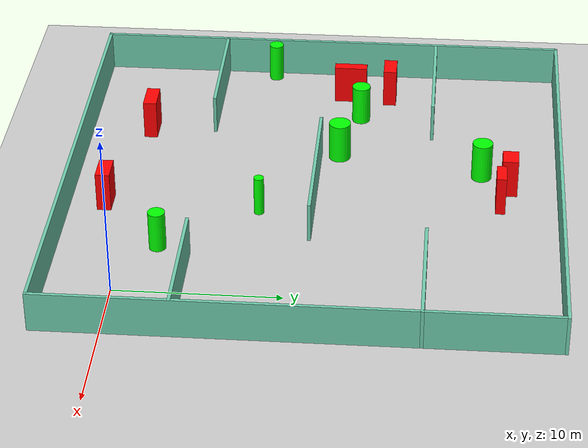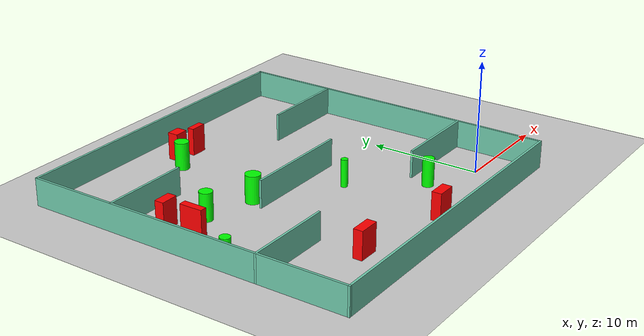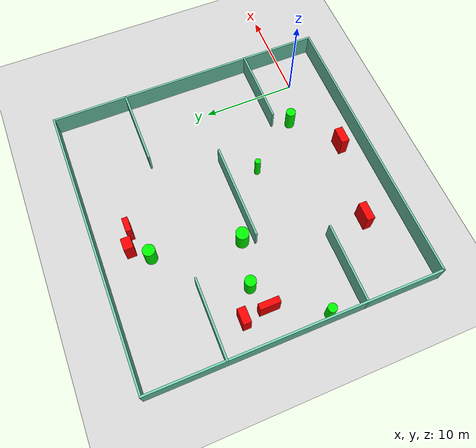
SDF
<sdf version="1.7">
 <world name="default">
  <light name="sun" type="directional">
   <pose>0 0 10 0 -0 0</pose>
   <diffuse>0.8 0.8 0.8 1</diffuse>
   <specular>0.2 0.2 0.2 1</specular>
   <attenuation>
    <range>1000</range>
    <constant>0.9</constant>
    <linear>0.01</linear>
    <quadratic>0.001</quadratic>
   </attenuation>
   <direction>-0.5 0.1 -0.9</direction>
   <spot><inner_angle>0</inner_angle><outer_angle>0</outer_angle><falloff>0</falloff></spot>
  </light>
  <model name="ground_plane">
   <static>1</static>
   <link name="link">
    <collision name="collision">
     <geometry><plane><normal>0 0 1</normal><size>100 100</size></plane></geometry>
     <surface>
      <contact><collide_bitmask>65535</collide_bitmask></contact>
      <friction><ode><mu>100</mu><mu2>50</mu2></ode></friction>
     </surface>
    </collision>
    <visual name="visual">
     <cast_shadows>0</cast_shadows>
     <geometry><plane><normal>0 0 1</normal><size>100 100</size></plane></geometry>
     <material>
      <script><uri>file://media/materials/scripts/gazebo.material</uri><name>Gazebo/Grey</name></script>
     </material>
    </visual>
   </link>
  </model>
  <gravity>0 0 -9.8</gravity>
  <magnetic_field>6e-06 2.3e-05 -4.2e-05</magnetic_field>
  <atmosphere type="adiabatic"/>
  <physics type="ode">
   <max_step_size>0.001</max_step_size>
   <real_time_factor>1</real_time_factor>
   <real_time_update_rate>1000</real_time_update_rate>
  </physics>
  <scene><ambient>0.4 0.4 0.4 1</ambient><background>0.7 0.7 0.7 1</background><shadows>1</shadows></scene>
  <spherical_coordinates>
   <surface_model>EARTH_WGS84</surface_model>
   <latitude_deg>0</latitude_deg>
   <longitude_deg>0</longitude_deg>
   <elevation>0</elevation>
   <heading_deg>0</heading_deg>
  </spherical_coordinates>
  <model name="my_base_walls">
   <link name="Wall_10">
    <collision name="Wall_10_Collision">
     <geometry><box><size>8.2 0.2 2.5</size></box></geometry>
     <pose>0 0 1.25 0 -0 0</pose>
    </collision>
    <visual name="Wall_10_Visual">
     <pose>0 0 1.25 0 -0 0</pose>
     <geometry><box><size>8.2 0.2 2.5</size></box></geometry>
     <material>
      <script><uri>file://media/materials/scripts/gazebo.material</uri><name>Gazebo/Grey</name></script>
      <ambient>0.435294 0.796078 0.67451 1</ambient>
     </material>
     <meta><layer>0</layer></meta>
    </visual>
    <pose>-11 -7 0 0 -0 0</pose>
   </link>
   <link name="Wall_12">
    <collision name="Wall_12_Collision">
     <geometry><box><size>8.2 0.2 2.5</size></box></geometry>
     <pose>0 0 1.25 0 -0 0</pose>
    </collision>
    <visual name="Wall_12_Visual">
     <pose>0 0 1.25 0 -0 0</pose>
     <geometry><box><size>8.2 0.2 2.5</size></box></geometry>
     <material>
      <script><uri>file://media/materials/scripts/gazebo.material</uri><name>Gazebo/Grey</name></script>
      <ambient>0.435294 0.796078 0.67451 1</ambient>
     </material>
     <meta><layer>0</layer></meta>
    </visual>
    <pose>-11 7 0 0 -0 0</pose>
   </link>
   <link name="Wall_14">
    <collision name="Wall_14_Collision">
     <geometry><box><size>8.2 0.2 2.5</size></box></geometry>
     <pose>0 0 1.25 0 -0 0</pose>
    </collision>
    <visual name="Wall_14_Visual">
     <pose>0 0 1.25 0 -0 0</pose>
     <geometry><box><size>8.2 0.2 2.5</size></box></geometry>
     <material>
      <script><uri>file://media/materials/scripts/gazebo.material</uri><name>Gazebo/Grey</name></script>
      <ambient>0.435294 0.796078 0.67451 1</ambient>
     </material>
     <meta><layer>0</layer></meta>
    </visual>
    <pose>11 7 0 0 -0 3.14159</pose>
   </link>
   <link name="Wall_16">
    <collision name="Wall_16_Collision">
     <geometry><box><size>10.2 0.2 2.5</size></box></geometry>
     <pose>0 0 1.25 0 -0 0</pose>
    </collision>
    <visual name="Wall_16_Visual">
     <pose>0 0 1.25 0 -0 0</pose>
     <geometry><box><size>10.2 0.2 2.5</size></box></geometry>
     <material>
      <script><uri>file://media/materials/scripts/gazebo.material</uri><name>Gazebo/Grey</name></script>
      <ambient>0.435294 0.796078 0.67451 1</ambient>
     </material>
     <meta><layer>0</layer></meta>
    </visual>
    <pose>0 0 0 0 -0 3.14159</pose>
   </link>
   <link name="Wall_2">
    <collision name="Wall_2_Collision">
     <geometry><box><size>30.2 0.2 2.5</size></box></geometry>
     <pose>0 0 1.25 0 -0 0</pose>
    </collision>
    <visual name="Wall_2_Visual">
     <pose>0 0 1.25 0 -0 0</pose>
     <geometry><box><size>30.2 0.2 2.5</size></box></geometry>
     <material>
      <script><uri>file://media/materials/scripts/gazebo.material</uri><name>Gazebo/Grey</name></script>
      <ambient>0.435294 0.796078 0.67451 1</ambient>
     </material>
     <meta><layer>0</layer></meta>
    </visual>
    <pose>0 -15 0 0 -0 3.14159</pose>
   </link>
   <link name="Wall_3">
    <collision name="Wall_3_Collision">
     <geometry><box><size>30.2 0.2 2.5</size></box></geometry>
     <pose>0 0 1.25 0 -0 0</pose>
    </collision>
    <visual name="Wall_3_Visual">
     <pose>0 0 1.25 0 -0 0</pose>
     <geometry><box><size>30.2 0.2 2.5</size></box></geometry>
     <material>
      <script><uri>file://media/materials/scripts/gazebo.material</uri><name>Gazebo/Grey</name></script>
      <ambient>0.435294 0.796078 0.67451 1</ambient>
     </material>
     <meta><layer>0</layer></meta>
    </visual>
    <pose>-15 0 0 0 -0 1.5708</pose>
   </link>
   <link name="Wall_4">
    <collision name="Wall_4_Collision">
     <geometry><box><size>30.2 0.2 2.5</size></box></geometry>
     <pose>0 0 1.25 0 -0 0</pose>
    </collision>
    <visual name="Wall_4_Visual">
     <pose>0 0 1.25 0 -0 0</pose>
     <geometry><box><size>30.2 0.2 2.5</size></box></geometry>
     <material>
      <script><uri>file://media/materials/scripts/gazebo.material</uri><name>Gazebo/Grey</name></script>
      <ambient>0.435294 0.796078 0.67451 1</ambient>
     </material>
     <meta><layer>0</layer></meta>
    </visual>
    <pose>0 15 0 0 -0 0</pose>
   </link>
   <link name="Wall_6">
    <collision name="Wall_6_Collision">
     <geometry><box><size>30.2 0.2 2.5</size></box></geometry>
     <pose>0 0 1.25 0 -0 0</pose>
    </collision>
    <visual name="Wall_6_Visual">
     <pose>0 0 1.25 0 -0 0</pose>
     <geometry><box><size>30.2 0.2 2.5</size></box></geometry>
     <material>
      <script><uri>file://media/materials/scripts/gazebo.material</uri><name>Gazebo/Grey</name></script>
      <ambient>0.435294 0.796078 0.67451 1</ambient>
     </material>
     <meta><layer>0</layer></meta>
    </visual>
    <pose>15 0 0 0 -0 1.5708</pose>
   </link>
   <link name="Wall_8">
    <collision name="Wall_8_Collision">
     <geometry><box><size>8.2 0.2 2.5</size></box></geometry>
     <pose>0 0 1.25 0 -0 0</pose>
    </collision>
    <visual name="Wall_8_Visual">
     <pose>0 0 1.25 0 -0 0</pose>
     <geometry><box><size>8.2 0.2 2.5</size></box></geometry>
     <material>
      <script><uri>file://media/materials/scripts/gazebo.material</uri><name>Gazebo/Grey</name></script>
      <ambient>0.435294 0.796078 0.67451 1</ambient>
     </material>
     <meta><layer>0</layer></meta>
    </visual>
    <pose>11 -7 0 0 -0 3.14159</pose>
   </link>
   <static>1</static>
   <pose>-11 11 0 0 -0 0</pose>
  </model>
  <model name="cylinder1">
   <static>1</static>
   <link name="link">
    <inertial>
     <mass>1</mass>
     <inertia><ixx>0.5</ixx><ixy>0</ixy><ixz>0</ixz><iyy>0.5</iyy><iyz>0</iyz><izz>1</izz></inertia>
    </inertial>
    <collision name="collision">
     <geometry><cylinder><radius>0.5758403084391854</radius><length>2.5</length></cylinder></geometry>
    </collision>
    <visual name="visual">
     <geometry><cylinder><radius>0.5758403084391854</radius><length>2.5</length></cylinder></geometry>
     <material>
      <ambient>0 1 0 1</ambient>
      <diffuse>0 1 0 1</diffuse>
      <specular>0.1 0.1 0.1 1</specular>
      <emissive>0 0 0 0</emissive>
     </material>
    </visual>
   </link>
   <pose>-20.1398447834664 13.323867837885722 1.25 0 0 0</pose>
  </model>
  <model name="cylinder2">
   <static>1</static>
   <link name="link">
    <inertial>
     <mass>1</mass>
     <inertia><ixx>0.5</ixx><ixy>0</ixy><ixz>0</ixz><iyy>0.5</iyy><iyz>0</iyz><izz>1</izz></inertia>
    </inertial>
    <collision name="collision">
     <geometry><cylinder><radius>0.4581189119267266</radius><length>2.5</length></cylinder></geometry>
    </collision>
    <visual name="visual">
     <geometry><cylinder><radius>0.4581189119267266</radius><length>2.5</length></cylinder></geometry>
     <material>
      <ambient>0 1 0 1</ambient>
      <diffuse>0 1 0 1</diffuse>
      <specular>0.1 0.1 0.1 1</specular>
      <emissive>0 0 0 0</emissive>
     </material>
    </visual>
   </link>
   <pose>-25.29295293475088 7.328186921578675 1.25 0 0 0</pose>
  </model>
  <model name="cylinder3">
   <static>1</static>
   <link name="link">
    <inertial>
     <mass>1</mass>
     <inertia><ixx>0.5</ixx><ixy>0</ixy><ixz>0</ixz><iyy>0.5</iyy><iyz>0</iyz><izz>1</izz></inertia>
    </inertial>
    <collision name="collision">
     <geometry><cylinder><radius>0.6301138772303589</radius><length>2.5</length></cylinder></geometry>
    </collision>
    <visual name="visual">
     <geometry><cylinder><radius>0.6301138772303589</radius><length>2.5</length></cylinder></geometry>
     <material>
      <ambient>0 1 0 1</ambient>
      <diffuse>0 1 0 1</diffuse>
      <specular>0.1 0.1 0.1 1</specular>
      <emissive>0 0 0 0</emissive>
     </material>
    </visual>
   </link>
   <pose>-13.695079661934674 21.209588433935878 1.25 0 0 0</pose>
  </model>
  <model name="cylinder4">
   <static>1</static>
   <link name="link">
    <inertial>
     <mass>1</mass>
     <inertia><ixx>0.5</ixx><ixy>0</ixy><ixz>0</ixz><iyy>0.5</iyy><iyz>0</iyz><izz>1</izz></inertia>
    </inertial>
    <collision name="collision">
     <geometry><cylinder><radius>0.6799918257773068</radius><length>2.5</length></cylinder></geometry>
    </collision>
    <visual name="visual">
     <geometry><cylinder><radius>0.6799918257773068</radius><length>2.5</length></cylinder></geometry>
     <material>
      <ambient>0 1 0 1</ambient>
      <diffuse>0 1 0 1</diffuse>
      <specular>0.1 0.1 0.1 1</specular>
      <emissive>0 0 0 0</emissive>
     </material>
    </visual>
   </link>
   <pose>-15.453232292958605 12.225397838606991 1.25 0 0 0</pose>
  </model>
  <model name="cylinder5">
   <static>1</static>
   <link name="link">
    <inertial>
     <mass>1</mass>
     <inertia><ixx>0.5</ixx><ixy>0</ixy><ixz>0</ixz><iyy>0.5</iyy><iyz>0</iyz><izz>1</izz></inertia>
    </inertial>
    <collision name="collision">
     <geometry><cylinder><radius>0.5136848478023002</radius><length>2.5</length></cylinder></geometry>
    </collision>
    <visual name="visual">
     <geometry><cylinder><radius>0.5136848478023002</radius><length>2.5</length></cylinder></geometry>
     <material>
      <ambient>0 1 0 1</ambient>
      <diffuse>0 1 0 1</diffuse>
      <specular>0.1 0.1 0.1 1</specular>
      <emissive>0 0 0 0</emissive>
     </material>
    </visual>
   </link>
   <pose>-4.560598172660997 2.0977509596159356 1.25 0 0 0</pose>
  </model>
  <model name="cylinder6">
   <static>1</static>
   <link name="link">
    <inertial>
     <mass>1</mass>
     <inertia><ixx>0.5</ixx><ixy>0</ixy><ixz>0</ixz><iyy>0.5</iyy><iyz>0</iyz><izz>1</izz></inertia>
    </inertial>
    <collision name="collision">
     <geometry><cylinder><radius>0.31212543186929265</radius><length>2.5</length></cylinder></geometry>
    </collision>
    <visual name="visual">
     <geometry><cylinder><radius>0.31212543186929265</radius><length>2.5</length></cylinder></geometry>
     <material>
      <ambient>0 1 0 1</ambient>
      <diffuse>0 1 0 1</diffuse>
      <specular>0.1 0.1 0.1 1</specular>
      <emissive>0 0 0 0</emissive>
     </material>
    </visual>
   </link>
   <pose>-8.738182095104975 7.741713465999169 1.25 0 0 0</pose>
  </model>
  <model name="box1">
   <static>1</static>
   <link name="link">
    <inertial>
     <mass>1</mass>
     <inertia><ixx>0.083</ixx><ixy>0</ixy><ixz>0</ixz><iyy>0.083</iyy><iyz>0</iyz><izz>0.083</izz></inertia>
    </inertial>
    <collision name="collision">
     <geometry><box><size>1.5249126121182004 0.5914437530535828 2.5</size></box></geometry>
    </collision>
    <visual name="visual">
     <geometry><box><size>1.5249126121182004 0.5914437530535828 2.5</size></box></geometry>
     <material>
      <ambient>1 0 0 1</ambient>
      <diffuse>1 0 0 1</diffuse>
      <specular>0.1 0.1 0.1 1</specular>
      <emissive>0 0 0 0</emissive>
     </material>
    </visual>
    <sensor name="my_contact" type="contact">
     <contact><collision>box_collision</collision><topic>__default_topic__</topic></contact>
    </sensor>
   </link>
   <pose>-10.349073310849432 22.37529241966513 1.25 0 0 0</pose>
  </model>
  <model name="box2">
   <static>1</static>
   <link name="link">
    <inertial>
     <mass>1</mass>
     <inertia><ixx>0.083</ixx><ixy>0</ixy><ixz>0</ixz><iyy>0.083</iyy><iyz>0</iyz><izz>0.083</izz></inertia>
    </inertial>
    <collision name="collision">
     <geometry><box><size>1.267241449349168 0.9764630336259577 2.5</size></box></geometry>
    </collision>
    <visual name="visual">
     <geometry><box><size>1.267241449349168 0.9764630336259577 2.5</size></box></geometry>
     <material>
      <ambient>1 0 0 1</ambient>
      <diffuse>1 0 0 1</diffuse>
      <specular>0.1 0.1 0.1 1</specular>
      <emissive>0 0 0 0</emissive>
     </material>
    </visual>
    <sensor name="my_contact" type="contact">
     <contact><collision>box_collision</collision><topic>__default_topic__</topic></contact>
    </sensor>
   </link>
   <pose>-12.23520100598494 22.931209133502744 1.25 0 0 0</pose>
  </model>
  <model name="box3">
   <static>1</static>
   <link name="link">
    <inertial>
     <mass>1</mass>
     <inertia><ixx>0.083</ixx><ixy>0</ixy><ixz>0</ixz><iyy>0.083</iyy><iyz>0</iyz><izz>0.083</izz></inertia>
    </inertial>
    <collision name="collision">
     <geometry><box><size>1.928601274587402 0.8324911522435283 2.5</size></box></geometry>
    </collision>
    <visual name="visual">
     <geometry><box><size>1.928601274587402 0.8324911522435283 2.5</size></box></geometry>
     <material>
      <ambient>1 0 0 1</ambient>
      <diffuse>1 0 0 1</diffuse>
      <specular>0.1 0.1 0.1 1</specular>
      <emissive>0 0 0 0</emissive>
     </material>
    </visual>
    <sensor name="my_contact" type="contact">
     <contact><collision>box_collision</collision><topic>__default_topic__</topic></contact>
    </sensor>
   </link>
   <pose>-17.89620003232293 -0.07496069170695385 1.25 0 0 0</pose>
  </model>
  <model name="box4">
   <static>1</static>
   <link name="link">
    <inertial>
     <mass>1</mass>
     <inertia><ixx>0.083</ixx><ixy>0</ixy><ixz>0</ixz><iyy>0.083</iyy><iyz>0</iyz><izz>0.083</izz></inertia>
    </inertial>
    <collision name="collision">
     <geometry><box><size>0.635321330320847 2.097730042343093 2.5</size></box></geometry>
    </collision>
    <visual name="visual">
     <geometry><box><size>0.635321330320847 2.097730042343093 2.5</size></box></geometry>
     <material>
      <ambient>1 0 0 1</ambient>
      <diffuse>1 0 0 1</diffuse>
      <specular>0.1 0.1 0.1 1</specular>
      <emissive>0 0 0 0</emissive>
     </material>
    </visual>
    <sensor name="my_contact" type="contact">
     <contact><collision>box_collision</collision><topic>__default_topic__</topic></contact>
    </sensor>
   </link>
   <pose>-22.71890639058808 12.502406716237363 1.25 0 0 0</pose>
  </model>
  <model name="box5">
   <static>1</static>
   <link name="link">
    <inertial>
     <mass>1</mass>
     <inertia><ixx>0.083</ixx><ixy>0</ixy><ixz>0</ixz><iyy>0.083</iyy><iyz>0</iyz><izz>0.083</izz></inertia>
    </inertial>
    <collision name="collision">
     <geometry><box><size>1.5968873085739161 0.8345242211281549 2.5</size></box></geometry>
    </collision>
    <visual name="visual">
     <geometry><box><size>1.5968873085739161 0.8345242211281549 2.5</size></box></geometry>
     <material>
      <ambient>1 0 0 1</ambient>
      <diffuse>1 0 0 1</diffuse>
      <specular>0.1 0.1 0.1 1</specular>
      <emissive>0 0 0 0</emissive>
     </material>
    </visual>
    <sensor name="my_contact" type="contact">
     <contact><collision>box_collision</collision><topic>__default_topic__</topic></contact>
    </sensor>
   </link>
   <pose>-22.904645586483543 15.091787614610052 1.25 0 0 0</pose>
  </model>
  <model name="box6">
   <static>1</static>
   <link name="link">
    <inertial>
     <mass>1</mass>
     <inertia><ixx>0.083</ixx><ixy>0</ixy><ixz>0</ixz><iyy>0.083</iyy><iyz>0</iyz><izz>0.083</izz></inertia>
    </inertial>
    <collision name="collision">
     <geometry><box><size>1.7533177317365203 0.8667550716542402 2.5</size></box></geometry>
    </collision>
    <visual name="visual">
     <geometry><box><size>1.7533177317365203 0.8667550716542402 2.5</size></box></geometry>
     <material>
      <ambient>1 0 0 1</ambient>
      <diffuse>1 0 0 1</diffuse>
      <specular>0.1 0.1 0.1 1</specular>
      <emissive>0 0 0 0</emissive>
     </material>
    </visual>
    <sensor name="my_contact" type="contact">
     <contact><collision>box_collision</collision><topic>__default_topic__</topic></contact>
    </sensor>
   </link>
   <pose>-9.145713594302618 -1.7264222415727732 1.25 0 0 0</pose>
  </model>
 </world>
</sdf>
